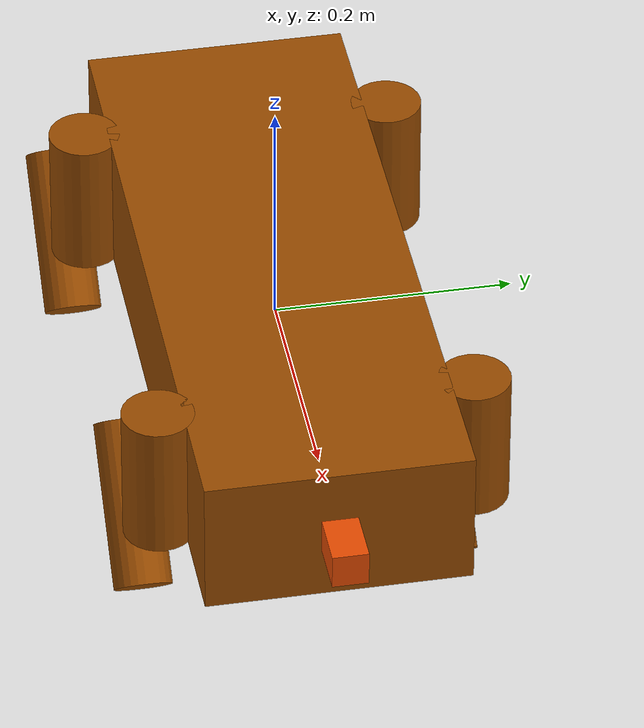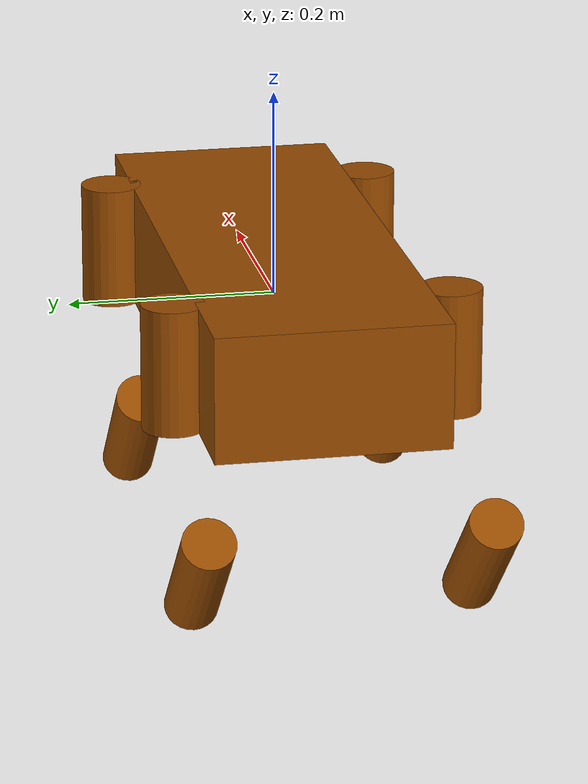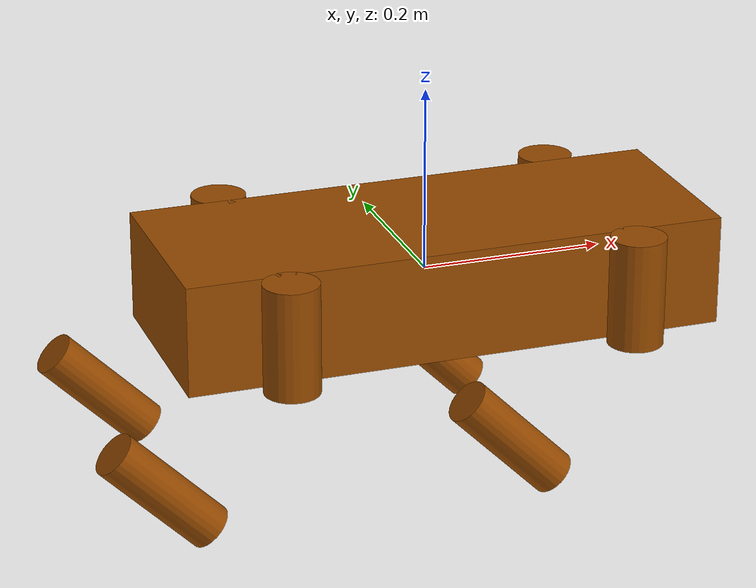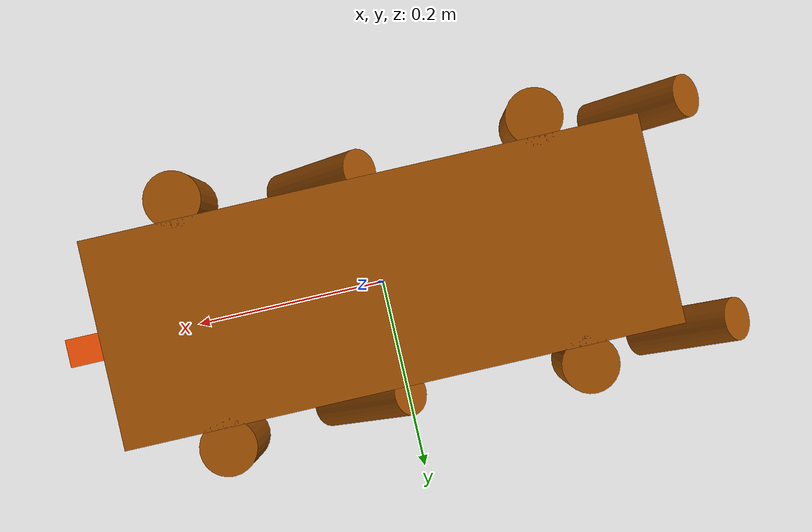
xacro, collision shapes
<robot name="UnitreeDog" xmlns:xacro="http://www.ros.org/wiki/xacro">
  <!-- ===========================
       BASE / TRUNK (box approx)
       =========================== -->
  <link name="base_link">
    <visual>
      <origin xyz="0 0 0" rpy="0 0 0"/>
      <geometry>
        <mesh filename="package://unitreedog_description/meshes/trunk.dae" scale="1.0 1.0 1.0"/>
      </geometry>
      <material name="base_color">
        <color rgba="0.59 0.29 0.0 1.0"/>
      </material>
    </visual>

    <!-- Collision: simplified box for performance -->
    <collision>
      <origin xyz="0 0 0" rpy="0 0 0"/>
      <geometry>
        <box size="0.588 0.22 0.12"/> <!-- length x width x height (m) -->
      </geometry>
    </collision>

    <!-- Inertial: computed for the box geometry -->
  </link>

  <!-- ===========================
       BACK HIP RIGHT (small block)
       =========================== -->
  <link name="back_hip_right">
    <visual>
      <origin xyz="0 0 0" rpy="0 3.1416 0"/>
      <geometry>
        <mesh filename="package://unitreedog_description/meshes/hip.dae" scale="1.0 1.0 1.0"/>
      </geometry>
      <material name="base_color">
        <color rgba="0.59 0.29 0.0 1.0"/>
      </material>
    </visual>

    <collision>
      <origin xyz="0 0 0" rpy="0 0 0"/>
      <geometry>
        <box size="0.06 0.04 0.04"/>
      </geometry>
    </collision>

    <inertial>
      <origin xyz="0 0 0" rpy="0 0 0"/>
      <mass value="0.125"/>
      <inertia
        ixx="0.00003333" ixy="0.0" ixz="0.0"
        iyy="0.00005417" iyz="0.0"
        izz="0.00005417"/>
    </inertial>
  </link>

  <joint name="base_to_back_hip_right" type="revolute">
    <axis xyz="1 0 0"/>
    <parent link="base_link"/>
    <child link="back_hip_right"/>
    <origin xyz="-0.19 -0.05 0" rpy="0 0 0"/>
    <limit lower="-0.6" upper="0.6" effort="10" velocity="0.5"/>
  </joint>

  <!-- ===========================
       BACK HIP LEFT
       =========================== -->
  <link name="back_hip_left">
    <visual>
      <origin xyz="0 0 0" rpy="0 3.1416 0"/>
      <geometry>
        <mesh filename="package://unitreedog_description/meshes/hip.dae" scale="1.0 1.0 1.0"/>
      </geometry>
      <material name="base_color">
        <color rgba="0.59 0.29 0.0 1.0"/>
      </material>
    </visual>

    <collision>
      <origin xyz="0 0 0" rpy="0 0 0"/>
      <geometry>
        <box size="0.06 0.04 0.04"/>
      </geometry>
    </collision>

    <inertial>
      <origin xyz="0 0 0" rpy="0 0 0"/>
      <mass value="0.125"/>
      <inertia
        ixx="0.00003333" ixy="0.0" ixz="0.0"
        iyy="0.00005417" iyz="0.0"
        izz="0.00005417"/>
    </inertial>
  </link>

  <joint name="base_to_back_hip_left" type="revolute">
    <axis xyz="1 0 0"/>
    <parent link="base_link"/>
    <child link="back_hip_left"/>
    <origin xyz="-0.19 0.05 0" rpy="0 0 0"/>
    <limit lower="-0.6" upper="0.6" effort="10" velocity="0.5"/>
  </joint>

  <!-- ===========================
       FRONT HIP RIGHT
       =========================== -->
  <link name="front_hip_right">
    <visual>
      <origin xyz="0 0 0" rpy="0 0 0"/>
      <geometry>
        <mesh filename="package://unitreedog_description/meshes/hip.dae" scale="1.0 1.0 1.0"/>
      </geometry>
      <material name="base_color">
        <color rgba="0.59 0.29 0.0 1.0"/>
      </material>
    </visual>

    <collision>
      <origin xyz="0 0 0" rpy="0 0 0"/>
      <geometry>
        <box size="0.06 0.04 0.04"/>
      </geometry>
    </collision>

    <inertial>
      <origin xyz="0 0 0" rpy="0 0 0"/>
      <mass value="0.125"/>
      <inertia
        ixx="0.00003333" ixy="0.0" ixz="0.0"
        iyy="0.00005417" iyz="0.0"
        izz="0.00005417"/>
    </inertial>
  </link>

  <joint name="base_to_front_hip_right" type="revolute">
    <axis xyz="1 0 0"/>
    <parent link="base_link"/>
    <child link="front_hip_right"/>
    <origin xyz="0.19 -0.05 0" rpy="0 0 0"/>
    <limit lower="-0.6" upper="0.6" effort="10" velocity="0.5"/>
  </joint>

  <!-- ===========================
       FRONT HIP LEFT
       =========================== -->
  <link name="front_hip_left">
    <visual>
      <origin xyz="0 0 0" rpy="0 0 0"/>
      <geometry>
        <mesh filename="package://unitreedog_description/meshes/hip.dae" scale="1.0 1.0 1.0"/>
      </geometry>
      <material name="base_color">
        <color rgba="0.59 0.29 0.0 1.0"/>
      </material>
    </visual>

    <collision>
      <origin xyz="0 0 0" rpy="0 0 0"/>
      <geometry>
        <box size="0.06 0.04 0.04"/>
      </geometry>
    </collision>

    <inertial>
      <origin xyz="0 0 0" rpy="0 0 0"/>
      <mass value="0.125"/>
      <inertia
        ixx="0.00003333" ixy="0.0" ixz="0.0"
        iyy="0.00005417" iyz="0.0"
        izz="0.00005417"/>
    </inertial>
  </link>

  <joint name="base_to_front_hip_left" type="revolute">
    <axis xyz="1 0 0"/>
    <parent link="base_link"/>
    <child link="front_hip_left"/>
    <origin xyz="0.19 0.05 0" rpy="0 0 0"/>
    <limit lower="-0.6" upper="0.6" effort="10" velocity="0.5"/>
  </joint>

  <!-- ===========================
       CAMERA (small mass)
       =========================== -->
  <link name="camera">
    <visual>
      <origin xyz="0 -0.01 0.01" rpy="0.7854 0 0"/>
      <geometry>
        <mesh filename="package://unitreedog_description/meshes/depthCamera.dae" scale="1.0 1.0 1.0"/>
      </geometry>
      <material name="base_color">
        <color rgba="0.9 0.29 0.0 1"/>
      </material>
    </visual>

    <collision>
      <origin xyz="0 0 0" rpy="0 0 0"/>
      <geometry>
        <box size="0.08 0.03 0.03"/>
      </geometry>
    </collision>

    <inertial>
      <origin xyz="0 0 0" rpy="0 0 0"/>
      <mass value="0.15"/>
      <!-- approx sphere inertia (r~0.03) -->
      <inertia
        ixx="0.000054" ixy="0.0" ixz="0.0"
        iyy="0.000054" iyz="0.0"
        izz="0.000054"/>
    </inertial>
    <sensor name="unitree_camera" type="camera">
    <pose>0 0 0 0 0 0</pose>
    <visualize>true</visualize>
    <update_rate>30</update_rate>
    <camera>
      <horizontal_fov>1.089</horizontal_fov>
      <image>
        <width>640</width>
        <height>480</height>
        <format>R8G8B8</format>
      </image>
      <clip>
        <near>0.05</near>
        <far>8.0</far>
      </clip>
    </camera>
    <topic>camera/image_raw</topic>
    <plugin
      filename="ignition-gazebo-camera-plugin"
      name="ignition::gazebo::systems::Camera">
    </plugin>
  </sensor>
  </link>

  <joint name="base_to_camera" type="fixed">
    <parent link="base_link"/>
    <child link="camera"/>
    <origin xyz="0.3 0 0" rpy="0 0 0"/>
  </joint>

  <!-- ===========================
       ULTRASOUND SENSOR
       =========================== -->
  <link name="ultraSound">
    <visual>
      <origin xyz="0 0 0.02" rpy="-0.7854 0 0"/>
      <geometry>
        <mesh filename="package://unitreedog_description/meshes/ultraSound.dae" scale="1.0 1.0 1.0"/>
      </geometry>
      <material name="base_color">
        <color rgba="0.9 0.29 0.0 1"/>
      </material>
    </visual>

    <collision>
      <origin xyz="0 0 0" rpy="0 0 0"/>
      <geometry>
        <box size="0.04 0.02 0.02"/>
      </geometry>
    </collision>

    <inertial>
      <origin xyz="0 0 0" rpy="0 0 0"/>
      <mass value="0.05"/>
      <inertia
        ixx="0.00001" ixy="0.0" ixz="0.0"
        iyy="0.00001" iyz="0.0"
        izz="0.00001"/>
    </inertial>
  </link>

  <joint name="base_to_ultraSound" type="fixed">
    <parent link="camera"/>
    <child link="ultraSound"/>
    <origin xyz="0 0 0" rpy="0 0 0"/>
  </joint>

  <!-- ===========================
       RIGHT FRONT THIGH (cylinder)
       =========================== -->
  <link name="right_front_leg">
    <visual>
      <origin xyz="0 0 0" rpy="0 0.7854 0"/>
      <geometry>
        <mesh filename="package://unitreedog_description/meshes/thigh_mirror.dae" scale="1.0 1.0 1.0"/>
      </geometry>
      <material name="base_color">
        <color rgba="0.59 0.29 0.0 1.0"/>
      </material>
    </visual>

    <collision>
      <origin xyz="0 0 0" rpy="0 0 0"/>
      <geometry>
        <!-- cylinder: length ~0.12 m, radius 0.03 m (aligned along local X) -->
        <cylinder length="0.12" radius="0.03"/>
      </geometry>
    </collision>

    <inertial>
      <origin xyz="0 0 0" rpy="0 0 0"/>
      <mass value="0.9"/>
      <!-- cylinder inertia: I_perp ~0.0012825, I_long ~0.000405 -->
      <inertia
        ixx="0.0012825" ixy="0.0" ixz="0.0"
        iyy="0.0012825" iyz="0.0"
        izz="0.000405"/>
    </inertial>
  </link>

  <joint name="base_to_right_front_leg" type="revolute">
    <axis xyz="0 1 0"/>
    <limit lower="-0.52" upper="1.57" effort="10" velocity="0.5"/>
    <parent link="front_hip_right"/>
    <child link="right_front_leg"/>
    <origin xyz="0 -0.08 0 " rpy="0 0 0"/>
  </joint>

  <!-- FRONT CALF RIGHT -->
  <link name="front_calf_right">
    <visual>
      <origin xyz="0 0 0" rpy="0 0 0"/>
      <geometry>
        <mesh filename="package://unitreedog_description/meshes/calf.dae" scale="1.0 1.0 1.0"/>
      </geometry>
      <material name="base_color">
        <color rgba="0.59 0.29 0.0 1.0"/>
      </material>
    </visual>

    <collision>
      <origin xyz="0 0 0" rpy="0 0 0"/>
      <geometry>
        <!-- cylinder: length 0.14 m, radius 0.025 m -->
        <cylinder length="0.14" radius="0.025"/>
      </geometry>
    </collision>

    <inertial>
      <origin xyz="0 0 0" rpy="0 0 0"/>
      <mass value="0.6"/>
      <!-- cylinder inertia: I_perp ~0.00107375, I_long ~0.0001875 -->
      <inertia
        ixx="0.00107375" ixy="0.0" ixz="0.0"
        iyy="0.00107375" iyz="0.0"
        izz="0.0001875"/>
    </inertial>
  </link>

  <joint name="right_front_leg_to_calf" type="revolute">
    <axis xyz="0 1 0"/>
    <limit lower="-1.2" upper="0" effort="10" velocity="0.5"/>
    <parent link="right_front_leg"/>
    <child link="front_calf_right"/>
    <origin xyz="-0.14 0 -0.15" rpy="0 -0.7854 0"/>
  </joint>

  <!-- ===========================
       LEFT FRONT THIGH + CALF
       (same masses/inertias as right)
       =========================== -->
  <link name="left_front_leg">
    <visual>
      <origin xyz="0 0 0" rpy="0 0.7854 0"/>
      <geometry>
        <mesh filename="package://unitreedog_description/meshes/thigh.dae" scale="1.0 1.0 1.0"/>
      </geometry>
      <material name="base_color">
        <color rgba="0.59 0.29 0.0 1.0"/>
      </material>
    </visual>

    <collision>
      <origin xyz="0 0 0" rpy="0 0 0"/>
      <geometry>
        <cylinder length="0.12" radius="0.03"/>
      </geometry>
    </collision>

    <inertial>
      <origin xyz="0 0 0" rpy="0 0 0"/>
      <mass value="0.9"/>
      <inertia
        ixx="0.0012825" ixy="0.0" ixz="0.0"
        iyy="0.0012825" iyz="0.0"
        izz="0.000405"/>
    </inertial>
  </link>

  <joint name="base_to_left_front_leg" type="revolute">
    <axis xyz="0 1 0"/>
    <limit lower="-0.52" upper="1.57" effort="10" velocity="0.5"/>
    <parent link="front_hip_left"/>
    <child link="left_front_leg"/>
    <origin xyz="0 0.08 0" rpy="0 0 0"/>
  </joint>

  <link name="front_calf_left">
    <visual>
      <origin xyz="0 0 0" rpy="0 0 0"/>
      <geometry>
        <mesh filename="package://unitreedog_description/meshes/calf.dae" scale="1.0 1.0 1.0"/>
      </geometry>
      <material name="base_color">
        <color rgba="0.59 0.29 0.0 1.0"/>
      </material>
    </visual>

    <collision>
      <origin xyz="0 0 0" rpy="0 0 0"/>
      <geometry>
        <cylinder length="0.14" radius="0.025"/>
      </geometry>
    </collision>

    <inertial>
      <origin xyz="0 0 0" rpy="0 0 0"/>
      <mass value="0.6"/>
      <inertia
        ixx="0.00107375" ixy="0.0" ixz="0.0"
        iyy="0.00107375" iyz="0.0"
        izz="0.0001875"/>
    </inertial>
  </link>

  <joint name="left_front_leg_to_calf" type="revolute">
    <axis xyz="0 1 0"/>
    <limit lower="-1.2" upper="0" effort="10" velocity="0.5"/>
    <parent link="left_front_leg"/>
    <child link="front_calf_left"/>
    <origin xyz="-0.14 0 -0.15" rpy="0 -0.7854 0"/>
  </joint>

  <!-- ===========================
       RIGHT BACK THIGH + CALF
       =========================== -->
  <link name="right_back_leg">
    <visual>
      <origin xyz="0 0 0" rpy="0 0.7854 0"/>
      <geometry>
        <mesh filename="package://unitreedog_description/meshes/thigh_mirror.dae" scale="1.0 1.0 1.0"/>
      </geometry>
      <material name="base_color">
        <color rgba="0.59 0.29 0.0 1.0"/>
      </material>
    </visual>

    <collision>
      <origin xyz="0 0 0" rpy="0 0 0"/>
      <geometry>
        <cylinder length="0.12" radius="0.03"/>
      </geometry>
    </collision>

    <inertial>
      <origin xyz="0 0 0" rpy="0 0 0"/>
      <mass value="0.9"/>
      <inertia
        ixx="0.0012825" ixy="0.0" ixz="0.0"
        iyy="0.0012825" iyz="0.0"
        izz="0.000405"/>
    </inertial>
  </link>

  <joint name="hip_to_right_back_leg" type="revolute">
    <axis xyz="0 1 0"/>
    <limit lower="-0.52" upper="1.57" effort="10" velocity="0.5"/>
    <parent link="back_hip_right"/>
    <child link="right_back_leg"/>
    <origin xyz="0 -0.08 0" rpy="0 0 0"/>
  </joint>

  <link name="back_calf_right">
    <visual>
      <origin xyz="0 0 0" rpy="0 0 0"/>
      <geometry>
        <mesh filename="package://unitreedog_description/meshes/calf.dae" scale="1.0 1.0 1.0"/>
      </geometry>
      <material name="base_color">
        <color rgba="0.59 0.29 0.0 1.0"/>
      </material>
    </visual>

    <collision>
      <origin xyz="0 0 0" rpy="0 0 0"/>
      <geometry>
        <cylinder length="0.14" radius="0.025"/>
      </geometry>
    </collision>

    <inertial>
      <origin xyz="0 0 0" rpy="0 0 0"/>
      <mass value="0.6"/>
      <inertia
        ixx="0.00107375" ixy="0.0" ixz="0.0"
        iyy="0.00107375" iyz="0.0"
        izz="0.0001875"/>
    </inertial>
  </link>

  <joint name="right_back_leg_to_calf" type="revolute">
    <axis xyz="0 1 0"/>
    <limit lower="-1.2" upper="0" effort="10" velocity="0.5"/>
    <parent link="right_back_leg"/>
    <child link="back_calf_right"/>
    <origin xyz="-0.14 0 -0.15" rpy="0 -0.7854 0"/>
  </joint>

  <!-- ===========================
       LEFT BACK THIGH + CALF
       =========================== -->
  <link name="left_back_leg">
    <visual>
      <origin xyz="0 0 0" rpy="0 0.7854 0"/>
      <geometry>
        <mesh filename="package://unitreedog_description/meshes/thigh.dae" scale="1.0 1.0 1.0"/>
      </geometry>
      <material name="base_color">
        <color rgba="0.59 0.29 0.0 1.0"/>
      </material>
    </visual>

    <collision>
      <origin xyz="0 0 0" rpy="0 0 0"/>
      <geometry>
        <cylinder length="0.12" radius="0.03"/>
      </geometry>
    </collision>

    <inertial>
      <origin xyz="0 0 0" rpy="0 0 0"/>
      <mass value="0.9"/>
      <inertia
        ixx="0.0012825" ixy="0.0" ixz="0.0"
        iyy="0.0012825" iyz="0.0"
        izz="0.000405"/>
    </inertial>
  </link>

  <joint name="hip_to_left_back_leg" type="revolute">
    <axis xyz="0 1 0"/>
    <limit lower="-0.52" upper="1.57" effort="10" velocity="0.5"/>
    <parent link="back_hip_left"/>
    <child link="left_back_leg"/>
    <origin xyz="0 0.08 0" rpy="0 0 0"/>
  </joint>

  <link name="back_calf_left">
    <visual>
      <origin xyz="0 0 0" rpy="0 0 0"/>
      <geometry>
        <mesh filename="package://unitreedog_description/meshes/calf.dae" scale="1.0 1.0 1.0"/>
      </geometry>
      <material name="base_color">
        <color rgba="0.59 0.29 0.0 1.0"/>
      </material>
    </visual>

    <collision>
      <origin xyz="0 0 0" rpy="0 0 0"/>
      <geometry>
        <cylinder length="0.14" radius="0.025"/>
      </geometry>
    </collision>

    <inertial>
      <origin xyz="0 0 0" rpy="0 0 0"/>
      <mass value="0.6"/>
      <inertia
        ixx="0.00107375" ixy="0.0" ixz="0.0"
        iyy="0.00107375" iyz="0.0"
        izz="0.0001875"/>
    </inertial>
  </link>

  <joint name="left_back_leg_to_calf" type="revolute">
    <axis xyz="0 1 0"/>
    <limit lower="-1.2" upper="0" effort="10" velocity="0.5"/>
    <parent link="left_back_leg"/>
    <child link="back_calf_left"/>
    <origin xyz="-0.14 0 -0.15" rpy="0 -0.7854 0"/>
  </joint>

<gazebo>
  <plugin
    filename="ign_ros2_control-system"
    name="ign_ros2_control::IgnitionRos2ControlSystem">
    <ros>
      <namespace>/</namespace>
    </ros>
    </plugin>

  <plugin
    filename="ignition-gazebo-sensors-system"
    name="ignition::gazebo::systems::Sensors">
    <render_engine>ogre2</render_engine>
  </plugin>
</gazebo>
</robot>
